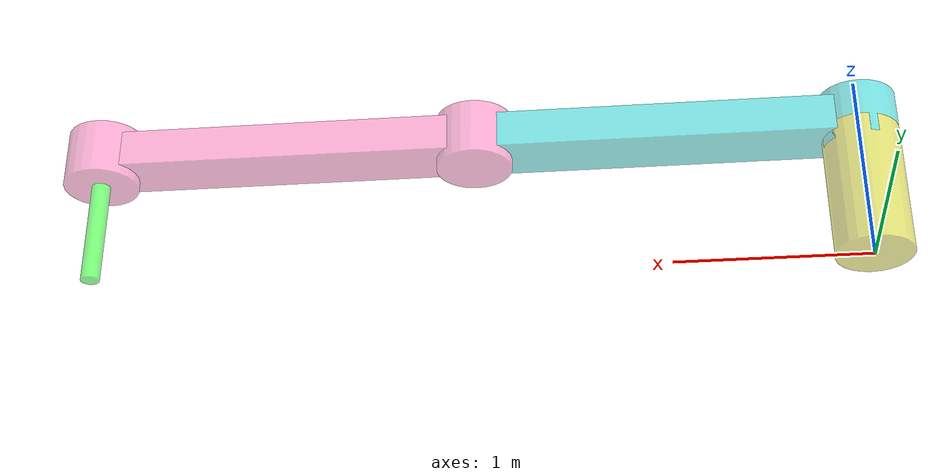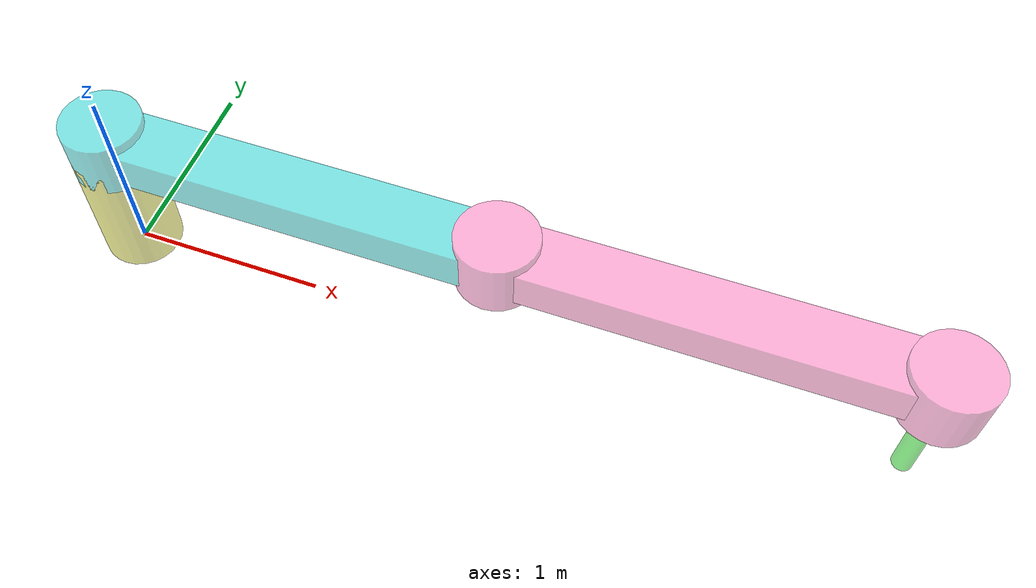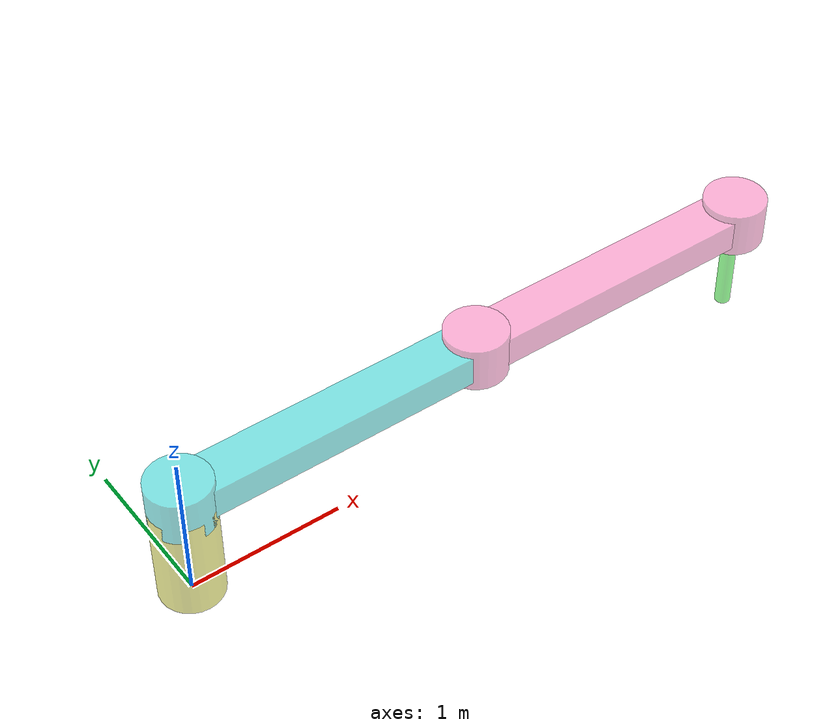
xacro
<?xml version="1.0"?>
<robot name="myscar" xmlns:xacro="http://ros.org/wiki/xacro">

    <xacro:property name="height" value="0.7" />

    <!-- Define material to paint the links -->
    <material name="yellow">
        <color rgba="0.8 0.8 0 0.5"/>
    </material>

    <material name="blue">
        <color rgba="0 0.8 0.8 0.5"/>
    </material>

    <material name="pink">
        <color rgba="1 0.4 0.7 0.5"/>
    </material>

    <material name="green">
        <color rgba="0 1 0 0.5"/>
    </material>

    <!-- Define links and joints -->

    <link name="base_link">
        <visual>
            <origin rpy="0 0 0" xyz="0 0 ${height/2}" />
            <geometry>
                <cylinder length="${height}" radius="0.2"/>
            </geometry>
            <material name="yellow"/>
        </visual>
    </link>

    <link name="link1">
        <visual>
            <origin rpy="0 0 0" xyz="1.0 0 0.1" />
            <geometry>
                <box size="2.0 0.3 0.2"/>
            </geometry>
            <material name="blue"/>
        </visual>
    </link>

    <joint name="base_link_to_link1" type="revolute">
        <axis xyz="0 0 1"/>
        <limit effort="1000.0" lower="0.0" upper="6.28" velocity="0.5"/>
        <origin rpy="0 0 0" xyz="0 0 0.65"/>
        <parent link="base_link"/>
        <child link="link1"/>
    </joint>

    <link name="link1b">
        <visual>
         <origin rpy="0 0 0" xyz="0 0 0.15" />
            <geometry>
                <cylinder length="0.3" radius="0.2"/>
            </geometry>
            <material name="blue"/>
        </visual>
    </link>

    <joint name="link1_to_link1b" type="fixed">
        <origin rpy="0 0 0" xyz="0 0 -0.05"/>
        <parent link="link1"/>
        <child link="link1b"/>
    </joint>

    <link name="link2">
        <visual>
            <origin xyz="1.0 0 0.1"/>
            <geometry>
                <box size = "2.0 0.3 0.2" />
            </geometry>
            <material name = 'pink'/>
        </visual>
    </link>

    <joint name="link1_to_link2" type="continuous">
        <parent link="link1"/>
        <child link="link2"/>
        <axis xyz="0 0 1"/>
        <origin rpy="0 0 0" xyz="2 0 0" />
    </joint>

    <link name="link2b">
        <visual>
            <origin xyz="0 0 0.15"/>
            <geometry>
                <cylinder length="0.3" radius="0.2" />
            </geometry>
            <material name = 'pink'/>
        </visual>
    </link>

    <joint name="link2_to_link2b" type="fixed">
        <parent link="link2"/>
        <child link="link2b"/>
        <origin xyz="0 0 -0.05"/>
    </joint>

    <link name="eelink">
        <visual>
            <origin xyz="0 0 -0.3"/>
            <geometry>
                <cylinder length="0.6" radius="0.05" />
            </geometry>
            <material name = 'green'/>
        </visual>
    </link>

    <joint name="link2_to_eelink" type="prismatic">
        <parent link="link2"/>
        <child link="eelink"/>
        <limit effort="1000.0" lower="0" upper="0.6" velocity="0.5"/>
        <axis xyz="0 0 1"/>
        <origin xyz="2 0 0"/>
    </joint>

    <link name="eelinkb">
        <visual>
            <origin xyz="0 0 0.1"/>
            <geometry>
                <cylinder length="0.3" radius="0.2" />
            </geometry>
            <material name = 'pink'/>
        </visual>
    </link>

    <joint name="link2_to_eelinkb" type="fixed">
        <parent link="link2"/>
        <child link="eelinkb"/>
        <origin xyz="2 0 0"/>
    </joint>

</robot>
